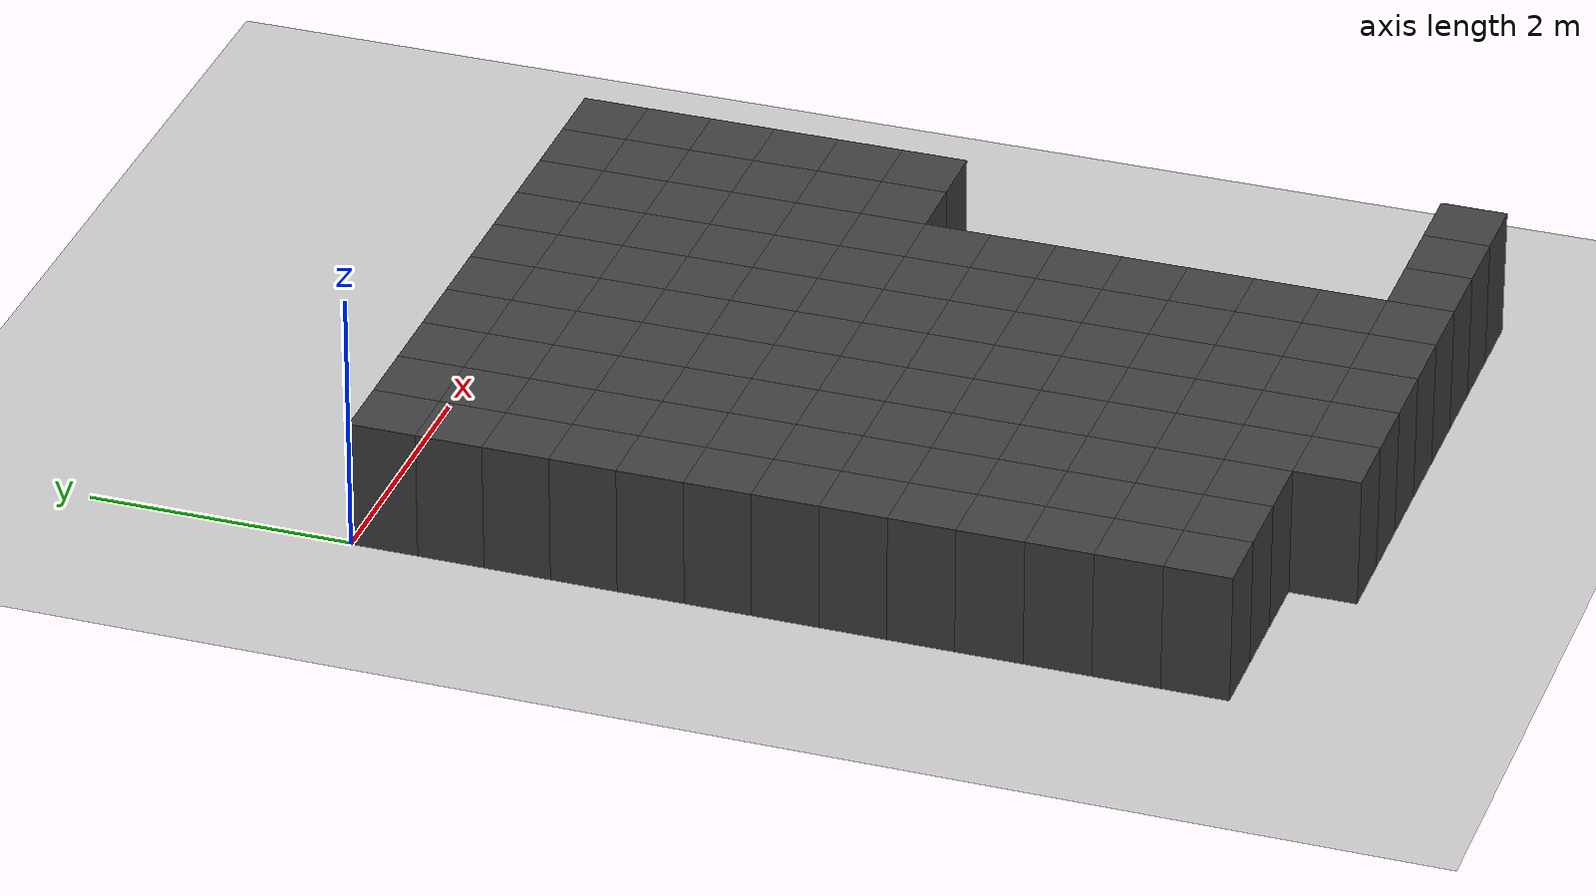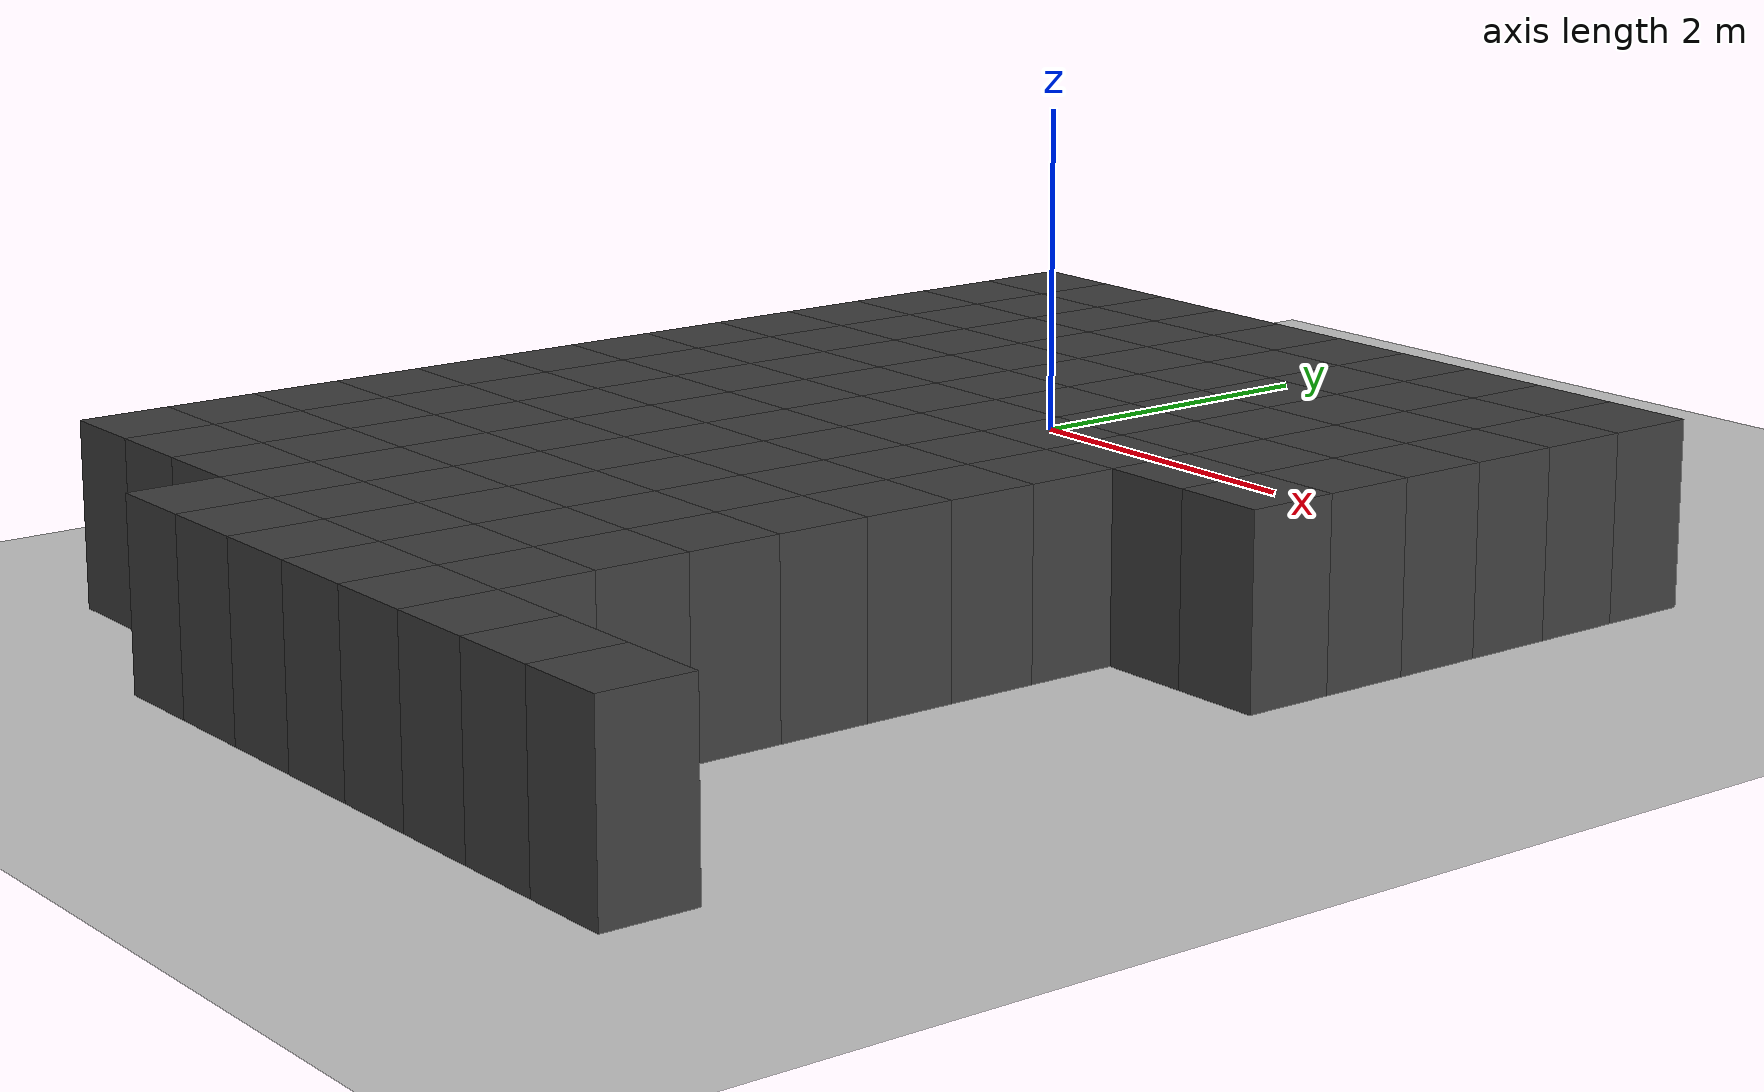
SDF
<sdf version="1.7">
 <world name="map_13820">
  <model name="ground_plane">
   <static>true</static>
   <link name="link">
    <collision name="collision">
     <geometry><plane><normal>0 0 1</normal><size>200 200</size></plane></geometry>
    </collision>
    <visual name="visual">
     <geometry><plane><normal>0 0 1</normal><size>200 200</size></plane></geometry>
     <material><ambient>0.8 0.8 0.8 1</ambient><diffuse>0.8 0.8 0.8 1</diffuse></material>
    </visual>
   </link>
  </model>
  <model name="maze_environment">
   <static>true</static>
   <link name="wall_896">
    <pose>0.250 -0.250 0.500 0 0 0</pose>
    <collision name="col"><geometry><box><size>0.5 0.5 1.0</size></box></geometry></collision>
    <visual name="vis">
     <geometry><box><size>0.5 0.5 1.0</size></box></geometry>
     <material><ambient>0.15 0.15 0.15 1</ambient><diffuse>0.25 0.25 0.25 1</diffuse></material>
    </visual>
   </link>
   <link name="wall_897">
    <pose>0.750 -0.250 0.500 0 0 0</pose>
    <collision name="col"><geometry><box><size>0.5 0.5 1.0</size></box></geometry></collision>
    <visual name="vis">
     <geometry><box><size>0.5 0.5 1.0</size></box></geometry>
     <material><ambient>0.15 0.15 0.15 1</ambient><diffuse>0.25 0.25 0.25 1</diffuse></material>
    </visual>
   </link>
   <link name="wall_898">
    <pose>1.250 -0.250 0.500 0 0 0</pose>
    <collision name="col"><geometry><box><size>0.5 0.5 1.0</size></box></geometry></collision>
    <visual name="vis">
     <geometry><box><size>0.5 0.5 1.0</size></box></geometry>
     <material><ambient>0.15 0.15 0.15 1</ambient><diffuse>0.25 0.25 0.25 1</diffuse></material>
    </visual>
   </link>
   <link name="wall_899">
    <pose>1.750 -0.250 0.500 0 0 0</pose>
    <collision name="col"><geometry><box><size>0.5 0.5 1.0</size></box></geometry></collision>
    <visual name="vis">
     <geometry><box><size>0.5 0.5 1.0</size></box></geometry>
     <material><ambient>0.15 0.15 0.15 1</ambient><diffuse>0.25 0.25 0.25 1</diffuse></material>
    </visual>
   </link>
   <link name="wall_900">
    <pose>2.250 -0.250 0.500 0 0 0</pose>
    <collision name="col"><geometry><box><size>0.5 0.5 1.0</size></box></geometry></collision>
    <visual name="vis">
     <geometry><box><size>0.5 0.5 1.0</size></box></geometry>
     <material><ambient>0.15 0.15 0.15 1</ambient><diffuse>0.25 0.25 0.25 1</diffuse></material>
    </visual>
   </link>
   <link name="wall_901">
    <pose>2.750 -0.250 0.500 0 0 0</pose>
    <collision name="col"><geometry><box><size>0.5 0.5 1.0</size></box></geometry></collision>
    <visual name="vis">
     <geometry><box><size>0.5 0.5 1.0</size></box></geometry>
     <material><ambient>0.15 0.15 0.15 1</ambient><diffuse>0.25 0.25 0.25 1</diffuse></material>
    </visual>
   </link>
   <link name="wall_902">
    <pose>3.250 -0.250 0.500 0 0 0</pose>
    <collision name="col"><geometry><box><size>0.5 0.5 1.0</size></box></geometry></collision>
    <visual name="vis">
     <geometry><box><size>0.5 0.5 1.0</size></box></geometry>
     <material><ambient>0.15 0.15 0.15 1</ambient><diffuse>0.25 0.25 0.25 1</diffuse></material>
    </visual>
   </link>
   <link name="wall_903">
    <pose>3.750 -0.250 0.500 0 0 0</pose>
    <collision name="col"><geometry><box><size>0.5 0.5 1.0</size></box></geometry></collision>
    <visual name="vis">
     <geometry><box><size>0.5 0.5 1.0</size></box></geometry>
     <material><ambient>0.15 0.15 0.15 1</ambient><diffuse>0.25 0.25 0.25 1</diffuse></material>
    </visual>
   </link>
   <link name="wall_904">
    <pose>4.250 -0.250 0.500 0 0 0</pose>
    <collision name="col"><geometry><box><size>0.5 0.5 1.0</size></box></geometry></collision>
    <visual name="vis">
     <geometry><box><size>0.5 0.5 1.0</size></box></geometry>
     <material><ambient>0.15 0.15 0.15 1</ambient><diffuse>0.25 0.25 0.25 1</diffuse></material>
    </visual>
   </link>
   <link name="wall_905">
    <pose>4.750 -0.250 0.500 0 0 0</pose>
    <collision name="col"><geometry><box><size>0.5 0.5 1.0</size></box></geometry></collision>
    <visual name="vis">
     <geometry><box><size>0.5 0.5 1.0</size></box></geometry>
     <material><ambient>0.15 0.15 0.15 1</ambient><diffuse>0.25 0.25 0.25 1</diffuse></material>
    </visual>
   </link>
   <link name="wall_936">
    <pose>0.250 -0.750 0.500 0 0 0</pose>
    <collision name="col"><geometry><box><size>0.5 0.5 1.0</size></box></geometry></collision>
    <visual name="vis">
     <geometry><box><size>0.5 0.5 1.0</size></box></geometry>
     <material><ambient>0.15 0.15 0.15 1</ambient><diffuse>0.25 0.25 0.25 1</diffuse></material>
    </visual>
   </link>
   <link name="wall_937">
    <pose>0.750 -0.750 0.500 0 0 0</pose>
    <collision name="col"><geometry><box><size>0.5 0.5 1.0</size></box></geometry></collision>
    <visual name="vis">
     <geometry><box><size>0.5 0.5 1.0</size></box></geometry>
     <material><ambient>0.15 0.15 0.15 1</ambient><diffuse>0.25 0.25 0.25 1</diffuse></material>
    </visual>
   </link>
   <link name="wall_938">
    <pose>1.250 -0.750 0.500 0 0 0</pose>
    <collision name="col"><geometry><box><size>0.5 0.5 1.0</size></box></geometry></collision>
    <visual name="vis">
     <geometry><box><size>0.5 0.5 1.0</size></box></geometry>
     <material><ambient>0.15 0.15 0.15 1</ambient><diffuse>0.25 0.25 0.25 1</diffuse></material>
    </visual>
   </link>
   <link name="wall_939">
    <pose>1.750 -0.750 0.500 0 0 0</pose>
    <collision name="col"><geometry><box><size>0.5 0.5 1.0</size></box></geometry></collision>
    <visual name="vis">
     <geometry><box><size>0.5 0.5 1.0</size></box></geometry>
     <material><ambient>0.15 0.15 0.15 1</ambient><diffuse>0.25 0.25 0.25 1</diffuse></material>
    </visual>
   </link>
   <link name="wall_940">
    <pose>2.250 -0.750 0.500 0 0 0</pose>
    <collision name="col"><geometry><box><size>0.5 0.5 1.0</size></box></geometry></collision>
    <visual name="vis">
     <geometry><box><size>0.5 0.5 1.0</size></box></geometry>
     <material><ambient>0.15 0.15 0.15 1</ambient><diffuse>0.25 0.25 0.25 1</diffuse></material>
    </visual>
   </link>
   <link name="wall_941">
    <pose>2.750 -0.750 0.500 0 0 0</pose>
    <collision name="col"><geometry><box><size>0.5 0.5 1.0</size></box></geometry></collision>
    <visual name="vis">
     <geometry><box><size>0.5 0.5 1.0</size></box></geometry>
     <material><ambient>0.15 0.15 0.15 1</ambient><diffuse>0.25 0.25 0.25 1</diffuse></material>
    </visual>
   </link>
   <link name="wall_942">
    <pose>3.250 -0.750 0.500 0 0 0</pose>
    <collision name="col"><geometry><box><size>0.5 0.5 1.0</size></box></geometry></collision>
    <visual name="vis">
     <geometry><box><size>0.5 0.5 1.0</size></box></geometry>
     <material><ambient>0.15 0.15 0.15 1</ambient><diffuse>0.25 0.25 0.25 1</diffuse></material>
    </visual>
   </link>
   <link name="wall_943">
    <pose>3.750 -0.750 0.500 0 0 0</pose>
    <collision name="col"><geometry><box><size>0.5 0.5 1.0</size></box></geometry></collision>
    <visual name="vis">
     <geometry><box><size>0.5 0.5 1.0</size></box></geometry>
     <material><ambient>0.15 0.15 0.15 1</ambient><diffuse>0.25 0.25 0.25 1</diffuse></material>
    </visual>
   </link>
   <link name="wall_944">
    <pose>4.250 -0.750 0.500 0 0 0</pose>
    <collision name="col"><geometry><box><size>0.5 0.5 1.0</size></box></geometry></collision>
    <visual name="vis">
     <geometry><box><size>0.5 0.5 1.0</size></box></geometry>
     <material><ambient>0.15 0.15 0.15 1</ambient><diffuse>0.25 0.25 0.25 1</diffuse></material>
    </visual>
   </link>
   <link name="wall_945">
    <pose>4.750 -0.750 0.500 0 0 0</pose>
    <collision name="col"><geometry><box><size>0.5 0.5 1.0</size></box></geometry></collision>
    <visual name="vis">
     <geometry><box><size>0.5 0.5 1.0</size></box></geometry>
     <material><ambient>0.15 0.15 0.15 1</ambient><diffuse>0.25 0.25 0.25 1</diffuse></material>
    </visual>
   </link>
   <link name="wall_969">
    <pose>0.250 -1.250 0.500 0 0 0</pose>
    <collision name="col"><geometry><box><size>0.5 0.5 1.0</size></box></geometry></collision>
    <visual name="vis">
     <geometry><box><size>0.5 0.5 1.0</size></box></geometry>
     <material><ambient>0.15 0.15 0.15 1</ambient><diffuse>0.25 0.25 0.25 1</diffuse></material>
    </visual>
   </link>
   <link name="wall_970">
    <pose>0.750 -1.250 0.500 0 0 0</pose>
    <collision name="col"><geometry><box><size>0.5 0.5 1.0</size></box></geometry></collision>
    <visual name="vis">
     <geometry><box><size>0.5 0.5 1.0</size></box></geometry>
     <material><ambient>0.15 0.15 0.15 1</ambient><diffuse>0.25 0.25 0.25 1</diffuse></material>
    </visual>
   </link>
   <link name="wall_971">
    <pose>1.250 -1.250 0.500 0 0 0</pose>
    <collision name="col"><geometry><box><size>0.5 0.5 1.0</size></box></geometry></collision>
    <visual name="vis">
     <geometry><box><size>0.5 0.5 1.0</size></box></geometry>
     <material><ambient>0.15 0.15 0.15 1</ambient><diffuse>0.25 0.25 0.25 1</diffuse></material>
    </visual>
   </link>
   <link name="wall_972">
    <pose>1.750 -1.250 0.500 0 0 0</pose>
    <collision name="col"><geometry><box><size>0.5 0.5 1.0</size></box></geometry></collision>
    <visual name="vis">
     <geometry><box><size>0.5 0.5 1.0</size></box></geometry>
     <material><ambient>0.15 0.15 0.15 1</ambient><diffuse>0.25 0.25 0.25 1</diffuse></material>
    </visual>
   </link>
   <link name="wall_973">
    <pose>2.250 -1.250 0.500 0 0 0</pose>
    <collision name="col"><geometry><box><size>0.5 0.5 1.0</size></box></geometry></collision>
    <visual name="vis">
     <geometry><box><size>0.5 0.5 1.0</size></box></geometry>
     <material><ambient>0.15 0.15 0.15 1</ambient><diffuse>0.25 0.25 0.25 1</diffuse></material>
    </visual>
   </link>
   <link name="wall_974">
    <pose>2.750 -1.250 0.500 0 0 0</pose>
    <collision name="col"><geometry><box><size>0.5 0.5 1.0</size></box></geometry></collision>
    <visual name="vis">
     <geometry><box><size>0.5 0.5 1.0</size></box></geometry>
     <material><ambient>0.15 0.15 0.15 1</ambient><diffuse>0.25 0.25 0.25 1</diffuse></material>
    </visual>
   </link>
   <link name="wall_975">
    <pose>3.250 -1.250 0.500 0 0 0</pose>
    <collision name="col"><geometry><box><size>0.5 0.5 1.0</size></box></geometry></collision>
    <visual name="vis">
     <geometry><box><size>0.5 0.5 1.0</size></box></geometry>
     <material><ambient>0.15 0.15 0.15 1</ambient><diffuse>0.25 0.25 0.25 1</diffuse></material>
    </visual>
   </link>
   <link name="wall_976">
    <pose>3.750 -1.250 0.500 0 0 0</pose>
    <collision name="col"><geometry><box><size>0.5 0.5 1.0</size></box></geometry></collision>
    <visual name="vis">
     <geometry><box><size>0.5 0.5 1.0</size></box></geometry>
     <material><ambient>0.15 0.15 0.15 1</ambient><diffuse>0.25 0.25 0.25 1</diffuse></material>
    </visual>
   </link>
   <link name="wall_977">
    <pose>4.250 -1.250 0.500 0 0 0</pose>
    <collision name="col"><geometry><box><size>0.5 0.5 1.0</size></box></geometry></collision>
    <visual name="vis">
     <geometry><box><size>0.5 0.5 1.0</size></box></geometry>
     <material><ambient>0.15 0.15 0.15 1</ambient><diffuse>0.25 0.25 0.25 1</diffuse></material>
    </visual>
   </link>
   <link name="wall_978">
    <pose>4.750 -1.250 0.500 0 0 0</pose>
    <collision name="col"><geometry><box><size>0.5 0.5 1.0</size></box></geometry></collision>
    <visual name="vis">
     <geometry><box><size>0.5 0.5 1.0</size></box></geometry>
     <material><ambient>0.15 0.15 0.15 1</ambient><diffuse>0.25 0.25 0.25 1</diffuse></material>
    </visual>
   </link>
   <link name="wall_995">
    <pose>0.250 -1.750 0.500 0 0 0</pose>
    <collision name="col"><geometry><box><size>0.5 0.5 1.0</size></box></geometry></collision>
    <visual name="vis">
     <geometry><box><size>0.5 0.5 1.0</size></box></geometry>
     <material><ambient>0.15 0.15 0.15 1</ambient><diffuse>0.25 0.25 0.25 1</diffuse></material>
    </visual>
   </link>
   <link name="wall_996">
    <pose>0.750 -1.750 0.500 0 0 0</pose>
    <collision name="col"><geometry><box><size>0.5 0.5 1.0</size></box></geometry></collision>
    <visual name="vis">
     <geometry><box><size>0.5 0.5 1.0</size></box></geometry>
     <material><ambient>0.15 0.15 0.15 1</ambient><diffuse>0.25 0.25 0.25 1</diffuse></material>
    </visual>
   </link>
   <link name="wall_997">
    <pose>1.250 -1.750 0.500 0 0 0</pose>
    <collision name="col"><geometry><box><size>0.5 0.5 1.0</size></box></geometry></collision>
    <visual name="vis">
     <geometry><box><size>0.5 0.5 1.0</size></box></geometry>
     <material><ambient>0.15 0.15 0.15 1</ambient><diffuse>0.25 0.25 0.25 1</diffuse></material>
    </visual>
   </link>
   <link name="wall_998">
    <pose>1.750 -1.750 0.500 0 0 0</pose>
    <collision name="col"><geometry><box><size>0.5 0.5 1.0</size></box></geometry></collision>
    <visual name="vis">
     <geometry><box><size>0.5 0.5 1.0</size></box></geometry>
     <material><ambient>0.15 0.15 0.15 1</ambient><diffuse>0.25 0.25 0.25 1</diffuse></material>
    </visual>
   </link>
   <link name="wall_999">
    <pose>2.250 -1.750 0.500 0 0 0</pose>
    <collision name="col"><geometry><box><size>0.5 0.5 1.0</size></box></geometry></collision>
    <visual name="vis">
     <geometry><box><size>0.5 0.5 1.0</size></box></geometry>
     <material><ambient>0.15 0.15 0.15 1</ambient><diffuse>0.25 0.25 0.25 1</diffuse></material>
    </visual>
   </link>
   <link name="wall_1000">
    <pose>2.750 -1.750 0.500 0 0 0</pose>
    <collision name="col"><geometry><box><size>0.5 0.5 1.0</size></box></geometry></collision>
    <visual name="vis">
     <geometry><box><size>0.5 0.5 1.0</size></box></geometry>
     <material><ambient>0.15 0.15 0.15 1</ambient><diffuse>0.25 0.25 0.25 1</diffuse></material>
    </visual>
   </link>
   <link name="wall_1001">
    <pose>3.250 -1.750 0.500 0 0 0</pose>
    <collision name="col"><geometry><box><size>0.5 0.5 1.0</size></box></geometry></collision>
    <visual name="vis">
     <geometry><box><size>0.5 0.5 1.0</size></box></geometry>
     <material><ambient>0.15 0.15 0.15 1</ambient><diffuse>0.25 0.25 0.25 1</diffuse></material>
    </visual>
   </link>
   <link name="wall_1002">
    <pose>3.750 -1.750 0.500 0 0 0</pose>
    <collision name="col"><geometry><box><size>0.5 0.5 1.0</size></box></geometry></collision>
    <visual name="vis">
     <geometry><box><size>0.5 0.5 1.0</size></box></geometry>
     <material><ambient>0.15 0.15 0.15 1</ambient><diffuse>0.25 0.25 0.25 1</diffuse></material>
    </visual>
   </link>
   <link name="wall_1003">
    <pose>4.250 -1.750 0.500 0 0 0</pose>
    <collision name="col"><geometry><box><size>0.5 0.5 1.0</size></box></geometry></collision>
    <visual name="vis">
     <geometry><box><size>0.5 0.5 1.0</size></box></geometry>
     <material><ambient>0.15 0.15 0.15 1</ambient><diffuse>0.25 0.25 0.25 1</diffuse></material>
    </visual>
   </link>
   <link name="wall_1004">
    <pose>4.750 -1.750 0.500 0 0 0</pose>
    <collision name="col"><geometry><box><size>0.5 0.5 1.0</size></box></geometry></collision>
    <visual name="vis">
     <geometry><box><size>0.5 0.5 1.0</size></box></geometry>
     <material><ambient>0.15 0.15 0.15 1</ambient><diffuse>0.25 0.25 0.25 1</diffuse></material>
    </visual>
   </link>
   <link name="wall_1024">
    <pose>0.250 -2.250 0.500 0 0 0</pose>
    <collision name="col"><geometry><box><size>0.5 0.5 1.0</size></box></geometry></collision>
    <visual name="vis">
     <geometry><box><size>0.5 0.5 1.0</size></box></geometry>
     <material><ambient>0.15 0.15 0.15 1</ambient><diffuse>0.25 0.25 0.25 1</diffuse></material>
    </visual>
   </link>
   <link name="wall_1025">
    <pose>0.750 -2.250 0.500 0 0 0</pose>
    <collision name="col"><geometry><box><size>0.5 0.5 1.0</size></box></geometry></collision>
    <visual name="vis">
     <geometry><box><size>0.5 0.5 1.0</size></box></geometry>
     <material><ambient>0.15 0.15 0.15 1</ambient><diffuse>0.25 0.25 0.25 1</diffuse></material>
    </visual>
   </link>
   <link name="wall_1026">
    <pose>1.250 -2.250 0.500 0 0 0</pose>
    <collision name="col"><geometry><box><size>0.5 0.5 1.0</size></box></geometry></collision>
    <visual name="vis">
     <geometry><box><size>0.5 0.5 1.0</size></box></geometry>
     <material><ambient>0.15 0.15 0.15 1</ambient><diffuse>0.25 0.25 0.25 1</diffuse></material>
    </visual>
   </link>
   <link name="wall_1027">
    <pose>1.750 -2.250 0.500 0 0 0</pose>
    <collision name="col"><geometry><box><size>0.5 0.5 1.0</size></box></geometry></collision>
    <visual name="vis">
     <geometry><box><size>0.5 0.5 1.0</size></box></geometry>
     <material><ambient>0.15 0.15 0.15 1</ambient><diffuse>0.25 0.25 0.25 1</diffuse></material>
    </visual>
   </link>
   <link name="wall_1028">
    <pose>2.250 -2.250 0.500 0 0 0</pose>
    <collision name="col"><geometry><box><size>0.5 0.5 1.0</size></box></geometry></collision>
    <visual name="vis">
     <geometry><box><size>0.5 0.5 1.0</size></box></geometry>
     <material><ambient>0.15 0.15 0.15 1</ambient><diffuse>0.25 0.25 0.25 1</diffuse></material>
    </visual>
   </link>
   <link name="wall_1029">
    <pose>2.750 -2.250 0.500 0 0 0</pose>
    <collision name="col"><geometry><box><size>0.5 0.5 1.0</size></box></geometry></collision>
    <visual name="vis">
     <geometry><box><size>0.5 0.5 1.0</size></box></geometry>
     <material><ambient>0.15 0.15 0.15 1</ambient><diffuse>0.25 0.25 0.25 1</diffuse></material>
    </visual>
   </link>
   <link name="wall_1030">
    <pose>3.250 -2.250 0.500 0 0 0</pose>
    <collision name="col"><geometry><box><size>0.5 0.5 1.0</size></box></geometry></collision>
    <visual name="vis">
     <geometry><box><size>0.5 0.5 1.0</size></box></geometry>
     <material><ambient>0.15 0.15 0.15 1</ambient><diffuse>0.25 0.25 0.25 1</diffuse></material>
    </visual>
   </link>
   <link name="wall_1031">
    <pose>3.750 -2.250 0.500 0 0 0</pose>
    <collision name="col"><geometry><box><size>0.5 0.5 1.0</size></box></geometry></collision>
    <visual name="vis">
     <geometry><box><size>0.5 0.5 1.0</size></box></geometry>
     <material><ambient>0.15 0.15 0.15 1</ambient><diffuse>0.25 0.25 0.25 1</diffuse></material>
    </visual>
   </link>
   <link name="wall_1032">
    <pose>4.250 -2.250 0.500 0 0 0</pose>
    <collision name="col"><geometry><box><size>0.5 0.5 1.0</size></box></geometry></collision>
    <visual name="vis">
     <geometry><box><size>0.5 0.5 1.0</size></box></geometry>
     <material><ambient>0.15 0.15 0.15 1</ambient><diffuse>0.25 0.25 0.25 1</diffuse></material>
    </visual>
   </link>
   <link name="wall_1033">
    <pose>4.750 -2.250 0.500 0 0 0</pose>
    <collision name="col"><geometry><box><size>0.5 0.5 1.0</size></box></geometry></collision>
    <visual name="vis">
     <geometry><box><size>0.5 0.5 1.0</size></box></geometry>
     <material><ambient>0.15 0.15 0.15 1</ambient><diffuse>0.25 0.25 0.25 1</diffuse></material>
    </visual>
   </link>
   <link name="wall_1055">
    <pose>0.250 -2.750 0.500 0 0 0</pose>
    <collision name="col"><geometry><box><size>0.5 0.5 1.0</size></box></geometry></collision>
    <visual name="vis">
     <geometry><box><size>0.5 0.5 1.0</size></box></geometry>
     <material><ambient>0.15 0.15 0.15 1</ambient><diffuse>0.25 0.25 0.25 1</diffuse></material>
    </visual>
   </link>
   <link name="wall_1056">
    <pose>0.750 -2.750 0.500 0 0 0</pose>
    <collision name="col"><geometry><box><size>0.5 0.5 1.0</size></box></geometry></collision>
    <visual name="vis">
     <geometry><box><size>0.5 0.5 1.0</size></box></geometry>
     <material><ambient>0.15 0.15 0.15 1</ambient><diffuse>0.25 0.25 0.25 1</diffuse></material>
    </visual>
   </link>
   <link name="wall_1057">
    <pose>1.250 -2.750 0.500 0 0 0</pose>
    <collision name="col"><geometry><box><size>0.5 0.5 1.0</size></box></geometry></collision>
    <visual name="vis">
     <geometry><box><size>0.5 0.5 1.0</size></box></geometry>
     <material><ambient>0.15 0.15 0.15 1</ambient><diffuse>0.25 0.25 0.25 1</diffuse></material>
    </visual>
   </link>
   <link name="wall_1058">
    <pose>1.750 -2.750 0.500 0 0 0</pose>
    <collision name="col"><geometry><box><size>0.5 0.5 1.0</size></box></geometry></collision>
    <visual name="vis">
     <geometry><box><size>0.5 0.5 1.0</size></box></geometry>
     <material><ambient>0.15 0.15 0.15 1</ambient><diffuse>0.25 0.25 0.25 1</diffuse></material>
    </visual>
   </link>
   <link name="wall_1059">
    <pose>2.250 -2.750 0.500 0 0 0</pose>
    <collision name="col"><geometry><box><size>0.5 0.5 1.0</size></box></geometry></collision>
    <visual name="vis">
     <geometry><box><size>0.5 0.5 1.0</size></box></geometry>
     <material><ambient>0.15 0.15 0.15 1</ambient><diffuse>0.25 0.25 0.25 1</diffuse></material>
    </visual>
   </link>
   <link name="wall_1060">
    <pose>2.750 -2.750 0.500 0 0 0</pose>
    <collision name="col"><geometry><box><size>0.5 0.5 1.0</size></box></geometry></collision>
    <visual name="vis">
     <geometry><box><size>0.5 0.5 1.0</size></box></geometry>
     <material><ambient>0.15 0.15 0.15 1</ambient><diffuse>0.25 0.25 0.25 1</diffuse></material>
    </visual>
   </link>
   <link name="wall_1061">
    <pose>3.250 -2.750 0.500 0 0 0</pose>
    <collision name="col"><geometry><box><size>0.5 0.5 1.0</size></box></geometry></collision>
    <visual name="vis">
     <geometry><box><size>0.5 0.5 1.0</size></box></geometry>
     <material><ambient>0.15 0.15 0.15 1</ambient><diffuse>0.25 0.25 0.25 1</diffuse></material>
    </visual>
   </link>
   <link name="wall_1062">
    <pose>3.750 -2.750 0.500 0 0 0</pose>
    <collision name="col"><geometry><box><size>0.5 0.5 1.0</size></box></geometry></collision>
    <visual name="vis">
     <geometry><box><size>0.5 0.5 1.0</size></box></geometry>
     <material><ambient>0.15 0.15 0.15 1</ambient><diffuse>0.25 0.25 0.25 1</diffuse></material>
    </visual>
   </link>
   <link name="wall_1063">
    <pose>4.250 -2.750 0.500 0 0 0</pose>
    <collision name="col"><geometry><box><size>0.5 0.5 1.0</size></box></geometry></collision>
    <visual name="vis">
     <geometry><box><size>0.5 0.5 1.0</size></box></geometry>
     <material><ambient>0.15 0.15 0.15 1</ambient><diffuse>0.25 0.25 0.25 1</diffuse></material>
    </visual>
   </link>
   <link name="wall_1064">
    <pose>4.750 -2.750 0.500 0 0 0</pose>
    <collision name="col"><geometry><box><size>0.5 0.5 1.0</size></box></geometry></collision>
    <visual name="vis">
     <geometry><box><size>0.5 0.5 1.0</size></box></geometry>
     <material><ambient>0.15 0.15 0.15 1</ambient><diffuse>0.25 0.25 0.25 1</diffuse></material>
    </visual>
   </link>
   <link name="wall_1095">
    <pose>0.250 -3.250 0.500 0 0 0</pose>
    <collision name="col"><geometry><box><size>0.5 0.5 1.0</size></box></geometry></collision>
    <visual name="vis">
     <geometry><box><size>0.5 0.5 1.0</size></box></geometry>
     <material><ambient>0.15 0.15 0.15 1</ambient><diffuse>0.25 0.25 0.25 1</diffuse></material>
    </visual>
   </link>
   <link name="wall_1096">
    <pose>0.750 -3.250 0.500 0 0 0</pose>
    <collision name="col"><geometry><box><size>0.5 0.5 1.0</size></box></geometry></collision>
    <visual name="vis">
     <geometry><box><size>0.5 0.5 1.0</size></box></geometry>
     <material><ambient>0.15 0.15 0.15 1</ambient><diffuse>0.25 0.25 0.25 1</diffuse></material>
    </visual>
   </link>
   <link name="wall_1097">
    <pose>1.250 -3.250 0.500 0 0 0</pose>
    <collision name="col"><geometry><box><size>0.5 0.5 1.0</size></box></geometry></collision>
    <visual name="vis">
     <geometry><box><size>0.5 0.5 1.0</size></box></geometry>
     <material><ambient>0.15 0.15 0.15 1</ambient><diffuse>0.25 0.25 0.25 1</diffuse></material>
    </visual>
   </link>
   <link name="wall_1098">
    <pose>1.750 -3.250 0.500 0 0 0</pose>
    <collision name="col"><geometry><box><size>0.5 0.5 1.0</size></box></geometry></collision>
    <visual name="vis">
     <geometry><box><size>0.5 0.5 1.0</size></box></geometry>
     <material><ambient>0.15 0.15 0.15 1</ambient><diffuse>0.25 0.25 0.25 1</diffuse></material>
    </visual>
   </link>
   <link name="wall_1099">
    <pose>2.250 -3.250 0.500 0 0 0</pose>
    <collision name="col"><geometry><box><size>0.5 0.5 1.0</size></box></geometry></collision>
    <visual name="vis">
     <geometry><box><size>0.5 0.5 1.0</size></box></geometry>
     <material><ambient>0.15 0.15 0.15 1</ambient><diffuse>0.25 0.25 0.25 1</diffuse></material>
    </visual>
   </link>
   <link name="wall_1100">
    <pose>2.750 -3.250 0.500 0 0 0</pose>
    <collision name="col"><geometry><box><size>0.5 0.5 1.0</size></box></geometry></collision>
    <visual name="vis">
     <geometry><box><size>0.5 0.5 1.0</size></box></geometry>
     <material><ambient>0.15 0.15 0.15 1</ambient><diffuse>0.25 0.25 0.25 1</diffuse></material>
    </visual>
   </link>
   <link name="wall_1101">
    <pose>3.250 -3.250 0.500 0 0 0</pose>
    <collision name="col"><geometry><box><size>0.5 0.5 1.0</size></box></geometry></collision>
    <visual name="vis">
     <geometry><box><size>0.5 0.5 1.0</size></box></geometry>
     <material><ambient>0.15 0.15 0.15 1</ambient><diffuse>0.25 0.25 0.25 1</diffuse></material>
    </visual>
   </link>
   <link name="wall_1102">
    <pose>3.750 -3.250 0.500 0 0 0</pose>
    <collision name="col"><geometry><box><size>0.5 0.5 1.0</size></box></geometry></collision>
    <visual name="vis">
     <geometry><box><size>0.5 0.5 1.0</size></box></geometry>
     <material><ambient>0.15 0.15 0.15 1</ambient><diffuse>0.25 0.25 0.25 1</diffuse></material>
    </visual>
   </link>
   <link name="wall_1122">
    <pose>0.250 -3.750 0.500 0 0 0</pose>
    <collision name="col"><geometry><box><size>0.5 0.5 1.0</size></box></geometry></collision>
    <visual name="vis">
     <geometry><box><size>0.5 0.5 1.0</size></box></geometry>
     <material><ambient>0.15 0.15 0.15 1</ambient><diffuse>0.25 0.25 0.25 1</diffuse></material>
    </visual>
   </link>
   <link name="wall_1123">
    <pose>0.750 -3.750 0.500 0 0 0</pose>
    <collision name="col"><geometry><box><size>0.5 0.5 1.0</size></box></geometry></collision>
    <visual name="vis">
     <geometry><box><size>0.5 0.5 1.0</size></box></geometry>
     <material><ambient>0.15 0.15 0.15 1</ambient><diffuse>0.25 0.25 0.25 1</diffuse></material>
    </visual>
   </link>
   <link name="wall_1124">
    <pose>1.250 -3.750 0.500 0 0 0</pose>
    <collision name="col"><geometry><box><size>0.5 0.5 1.0</size></box></geometry></collision>
    <visual name="vis">
     <geometry><box><size>0.5 0.5 1.0</size></box></geometry>
     <material><ambient>0.15 0.15 0.15 1</ambient><diffuse>0.25 0.25 0.25 1</diffuse></material>
    </visual>
   </link>
   <link name="wall_1125">
    <pose>1.750 -3.750 0.500 0 0 0</pose>
    <collision name="col"><geometry><box><size>0.5 0.5 1.0</size></box></geometry></collision>
    <visual name="vis">
     <geometry><box><size>0.5 0.5 1.0</size></box></geometry>
     <material><ambient>0.15 0.15 0.15 1</ambient><diffuse>0.25 0.25 0.25 1</diffuse></material>
    </visual>
   </link>
   <link name="wall_1126">
    <pose>2.250 -3.750 0.500 0 0 0</pose>
    <collision name="col"><geometry><box><size>0.5 0.5 1.0</size></box></geometry></collision>
    <visual name="vis">
     <geometry><box><size>0.5 0.5 1.0</size></box></geometry>
     <material><ambient>0.15 0.15 0.15 1</ambient><diffuse>0.25 0.25 0.25 1</diffuse></material>
    </visual>
   </link>
   <link name="wall_1127">
    <pose>2.750 -3.750 0.500 0 0 0</pose>
    <collision name="col"><geometry><box><size>0.5 0.5 1.0</size></box></geometry></collision>
    <visual name="vis">
     <geometry><box><size>0.5 0.5 1.0</size></box></geometry>
     <material><ambient>0.15 0.15 0.15 1</ambient><diffuse>0.25 0.25 0.25 1</diffuse></material>
    </visual>
   </link>
   <link name="wall_1128">
    <pose>3.250 -3.750 0.500 0 0 0</pose>
    <collision name="col"><geometry><box><size>0.5 0.5 1.0</size></box></geometry></collision>
    <visual name="vis">
     <geometry><box><size>0.5 0.5 1.0</size></box></geometry>
     <material><ambient>0.15 0.15 0.15 1</ambient><diffuse>0.25 0.25 0.25 1</diffuse></material>
    </visual>
   </link>
   <link name="wall_1129">
    <pose>3.750 -3.750 0.500 0 0 0</pose>
    <collision name="col"><geometry><box><size>0.5 0.5 1.0</size></box></geometry></collision>
    <visual name="vis">
     <geometry><box><size>0.5 0.5 1.0</size></box></geometry>
     <material><ambient>0.15 0.15 0.15 1</ambient><diffuse>0.25 0.25 0.25 1</diffuse></material>
    </visual>
   </link>
   <link name="wall_1149">
    <pose>0.250 -4.250 0.500 0 0 0</pose>
    <collision name="col"><geometry><box><size>0.5 0.5 1.0</size></box></geometry></collision>
    <visual name="vis">
     <geometry><box><size>0.5 0.5 1.0</size></box></geometry>
     <material><ambient>0.15 0.15 0.15 1</ambient><diffuse>0.25 0.25 0.25 1</diffuse></material>
    </visual>
   </link>
   <link name="wall_1150">
    <pose>0.750 -4.250 0.500 0 0 0</pose>
    <collision name="col"><geometry><box><size>0.5 0.5 1.0</size></box></geometry></collision>
    <visual name="vis">
     <geometry><box><size>0.5 0.5 1.0</size></box></geometry>
     <material><ambient>0.15 0.15 0.15 1</ambient><diffuse>0.25 0.25 0.25 1</diffuse></material>
    </visual>
   </link>
   <link name="wall_1151">
    <pose>1.250 -4.250 0.500 0 0 0</pose>
    <collision name="col"><geometry><box><size>0.5 0.5 1.0</size></box></geometry></collision>
    <visual name="vis">
     <geometry><box><size>0.5 0.5 1.0</size></box></geometry>
     <material><ambient>0.15 0.15 0.15 1</ambient><diffuse>0.25 0.25 0.25 1</diffuse></material>
    </visual>
   </link>
   <link name="wall_1152">
    <pose>1.750 -4.250 0.500 0 0 0</pose>
    <collision name="col"><geometry><box><size>0.5 0.5 1.0</size></box></geometry></collision>
    <visual name="vis">
     <geometry><box><size>0.5 0.5 1.0</size></box></geometry>
     <material><ambient>0.15 0.15 0.15 1</ambient><diffuse>0.25 0.25 0.25 1</diffuse></material>
    </visual>
   </link>
   <link name="wall_1153">
    <pose>2.250 -4.250 0.500 0 0 0</pose>
    <collision name="col"><geometry><box><size>0.5 0.5 1.0</size></box></geometry></collision>
    <visual name="vis">
     <geometry><box><size>0.5 0.5 1.0</size></box></geometry>
     <material><ambient>0.15 0.15 0.15 1</ambient><diffuse>0.25 0.25 0.25 1</diffuse></material>
    </visual>
   </link>
   <link name="wall_1154">
    <pose>2.750 -4.250 0.500 0 0 0</pose>
    <collision name="col"><geometry><box><size>0.5 0.5 1.0</size></box></geometry></collision>
    <visual name="vis">
     <geometry><box><size>0.5 0.5 1.0</size></box></geometry>
     <material><ambient>0.15 0.15 0.15 1</ambient><diffuse>0.25 0.25 0.25 1</diffuse></material>
    </visual>
   </link>
   <link name="wall_1155">
    <pose>3.250 -4.250 0.500 0 0 0</pose>
    <collision name="col"><geometry><box><size>0.5 0.5 1.0</size></box></geometry></collision>
    <visual name="vis">
     <geometry><box><size>0.5 0.5 1.0</size></box></geometry>
     <material><ambient>0.15 0.15 0.15 1</ambient><diffuse>0.25 0.25 0.25 1</diffuse></material>
    </visual>
   </link>
   <link name="wall_1156">
    <pose>3.750 -4.250 0.500 0 0 0</pose>
    <collision name="col"><geometry><box><size>0.5 0.5 1.0</size></box></geometry></collision>
    <visual name="vis">
     <geometry><box><size>0.5 0.5 1.0</size></box></geometry>
     <material><ambient>0.15 0.15 0.15 1</ambient><diffuse>0.25 0.25 0.25 1</diffuse></material>
    </visual>
   </link>
   <link name="wall_1176">
    <pose>0.250 -4.750 0.500 0 0 0</pose>
    <collision name="col"><geometry><box><size>0.5 0.5 1.0</size></box></geometry></collision>
    <visual name="vis">
     <geometry><box><size>0.5 0.5 1.0</size></box></geometry>
     <material><ambient>0.15 0.15 0.15 1</ambient><diffuse>0.25 0.25 0.25 1</diffuse></material>
    </visual>
   </link>
   <link name="wall_1177">
    <pose>0.750 -4.750 0.500 0 0 0</pose>
    <collision name="col"><geometry><box><size>0.5 0.5 1.0</size></box></geometry></collision>
    <visual name="vis">
     <geometry><box><size>0.5 0.5 1.0</size></box></geometry>
     <material><ambient>0.15 0.15 0.15 1</ambient><diffuse>0.25 0.25 0.25 1</diffuse></material>
    </visual>
   </link>
   <link name="wall_1178">
    <pose>1.250 -4.750 0.500 0 0 0</pose>
    <collision name="col"><geometry><box><size>0.5 0.5 1.0</size></box></geometry></collision>
    <visual name="vis">
     <geometry><box><size>0.5 0.5 1.0</size></box></geometry>
     <material><ambient>0.15 0.15 0.15 1</ambient><diffuse>0.25 0.25 0.25 1</diffuse></material>
    </visual>
   </link>
   <link name="wall_1179">
    <pose>1.750 -4.750 0.500 0 0 0</pose>
    <collision name="col"><geometry><box><size>0.5 0.5 1.0</size></box></geometry></collision>
    <visual name="vis">
     <geometry><box><size>0.5 0.5 1.0</size></box></geometry>
     <material><ambient>0.15 0.15 0.15 1</ambient><diffuse>0.25 0.25 0.25 1</diffuse></material>
    </visual>
   </link>
   <link name="wall_1180">
    <pose>2.250 -4.750 0.500 0 0 0</pose>
    <collision name="col"><geometry><box><size>0.5 0.5 1.0</size></box></geometry></collision>
    <visual name="vis">
     <geometry><box><size>0.5 0.5 1.0</size></box></geometry>
     <material><ambient>0.15 0.15 0.15 1</ambient><diffuse>0.25 0.25 0.25 1</diffuse></material>
    </visual>
   </link>
   <link name="wall_1181">
    <pose>2.750 -4.750 0.500 0 0 0</pose>
    <collision name="col"><geometry><box><size>0.5 0.5 1.0</size></box></geometry></collision>
    <visual name="vis">
     <geometry><box><size>0.5 0.5 1.0</size></box></geometry>
     <material><ambient>0.15 0.15 0.15 1</ambient><diffuse>0.25 0.25 0.25 1</diffuse></material>
    </visual>
   </link>
   <link name="wall_1182">
    <pose>3.250 -4.750 0.500 0 0 0</pose>
    <collision name="col"><geometry><box><size>0.5 0.5 1.0</size></box></geometry></collision>
    <visual name="vis">
     <geometry><box><size>0.5 0.5 1.0</size></box></geometry>
     <material><ambient>0.15 0.15 0.15 1</ambient><diffuse>0.25 0.25 0.25 1</diffuse></material>
    </visual>
   </link>
   <link name="wall_1183">
    <pose>3.750 -4.750 0.500 0 0 0</pose>
    <collision name="col"><geometry><box><size>0.5 0.5 1.0</size></box></geometry></collision>
    <visual name="vis">
     <geometry><box><size>0.5 0.5 1.0</size></box></geometry>
     <material><ambient>0.15 0.15 0.15 1</ambient><diffuse>0.25 0.25 0.25 1</diffuse></material>
    </visual>
   </link>
   <link name="wall_1211">
    <pose>0.250 -5.250 0.500 0 0 0</pose>
    <collision name="col"><geometry><box><size>0.5 0.5 1.0</size></box></geometry></collision>
    <visual name="vis">
     <geometry><box><size>0.5 0.5 1.0</size></box></geometry>
     <material><ambient>0.15 0.15 0.15 1</ambient><diffuse>0.25 0.25 0.25 1</diffuse></material>
    </visual>
   </link>
   <link name="wall_1212">
    <pose>0.750 -5.250 0.500 0 0 0</pose>
    <collision name="col"><geometry><box><size>0.5 0.5 1.0</size></box></geometry></collision>
    <visual name="vis">
     <geometry><box><size>0.5 0.5 1.0</size></box></geometry>
     <material><ambient>0.15 0.15 0.15 1</ambient><diffuse>0.25 0.25 0.25 1</diffuse></material>
    </visual>
   </link>
   <link name="wall_1213">
    <pose>1.250 -5.250 0.500 0 0 0</pose>
    <collision name="col"><geometry><box><size>0.5 0.5 1.0</size></box></geometry></collision>
    <visual name="vis">
     <geometry><box><size>0.5 0.5 1.0</size></box></geometry>
     <material><ambient>0.15 0.15 0.15 1</ambient><diffuse>0.25 0.25 0.25 1</diffuse></material>
    </visual>
   </link>
   <link name="wall_1214">
    <pose>1.750 -5.250 0.500 0 0 0</pose>
    <collision name="col"><geometry><box><size>0.5 0.5 1.0</size></box></geometry></collision>
    <visual name="vis">
     <geometry><box><size>0.5 0.5 1.0</size></box></geometry>
     <material><ambient>0.15 0.15 0.15 1</ambient><diffuse>0.25 0.25 0.25 1</diffuse></material>
    </visual>
   </link>
   <link name="wall_1215">
    <pose>2.250 -5.250 0.500 0 0 0</pose>
    <collision name="col"><geometry><box><size>0.5 0.5 1.0</size></box></geometry></collision>
    <visual name="vis">
     <geometry><box><size>0.5 0.5 1.0</size></box></geometry>
     <material><ambient>0.15 0.15 0.15 1</ambient><diffuse>0.25 0.25 0.25 1</diffuse></material>
    </visual>
   </link>
   <link name="wall_1216">
    <pose>2.750 -5.250 0.500 0 0 0</pose>
    <collision name="col"><geometry><box><size>0.5 0.5 1.0</size></box></geometry></collision>
    <visual name="vis">
     <geometry><box><size>0.5 0.5 1.0</size></box></geometry>
     <material><ambient>0.15 0.15 0.15 1</ambient><diffuse>0.25 0.25 0.25 1</diffuse></material>
    </visual>
   </link>
   <link name="wall_1217">
    <pose>3.250 -5.250 0.500 0 0 0</pose>
    <collision name="col"><geometry><box><size>0.5 0.5 1.0</size></box></geometry></collision>
    <visual name="vis">
     <geometry><box><size>0.5 0.5 1.0</size></box></geometry>
     <material><ambient>0.15 0.15 0.15 1</ambient><diffuse>0.25 0.25 0.25 1</diffuse></material>
    </visual>
   </link>
   <link name="wall_1218">
    <pose>3.750 -5.250 0.500 0 0 0</pose>
    <collision name="col"><geometry><box><size>0.5 0.5 1.0</size></box></geometry></collision>
    <visual name="vis">
     <geometry><box><size>0.5 0.5 1.0</size></box></geometry>
     <material><ambient>0.15 0.15 0.15 1</ambient><diffuse>0.25 0.25 0.25 1</diffuse></material>
    </visual>
   </link>
   <link name="wall_1246">
    <pose>0.250 -5.750 0.500 0 0 0</pose>
    <collision name="col"><geometry><box><size>0.5 0.5 1.0</size></box></geometry></collision>
    <visual name="vis">
     <geometry><box><size>0.5 0.5 1.0</size></box></geometry>
     <material><ambient>0.15 0.15 0.15 1</ambient><diffuse>0.25 0.25 0.25 1</diffuse></material>
    </visual>
   </link>
   <link name="wall_1247">
    <pose>0.750 -5.750 0.500 0 0 0</pose>
    <collision name="col"><geometry><box><size>0.5 0.5 1.0</size></box></geometry></collision>
    <visual name="vis">
     <geometry><box><size>0.5 0.5 1.0</size></box></geometry>
     <material><ambient>0.15 0.15 0.15 1</ambient><diffuse>0.25 0.25 0.25 1</diffuse></material>
    </visual>
   </link>
   <link name="wall_1248">
    <pose>1.250 -5.750 0.500 0 0 0</pose>
    <collision name="col"><geometry><box><size>0.5 0.5 1.0</size></box></geometry></collision>
    <visual name="vis">
     <geometry><box><size>0.5 0.5 1.0</size></box></geometry>
     <material><ambient>0.15 0.15 0.15 1</ambient><diffuse>0.25 0.25 0.25 1</diffuse></material>
    </visual>
   </link>
   <link name="wall_1249">
    <pose>1.750 -5.750 0.500 0 0 0</pose>
    <collision name="col"><geometry><box><size>0.5 0.5 1.0</size></box></geometry></collision>
    <visual name="vis">
     <geometry><box><size>0.5 0.5 1.0</size></box></geometry>
     <material><ambient>0.15 0.15 0.15 1</ambient><diffuse>0.25 0.25 0.25 1</diffuse></material>
    </visual>
   </link>
   <link name="wall_1250">
    <pose>2.250 -5.750 0.500 0 0 0</pose>
    <collision name="col"><geometry><box><size>0.5 0.5 1.0</size></box></geometry></collision>
    <visual name="vis">
     <geometry><box><size>0.5 0.5 1.0</size></box></geometry>
     <material><ambient>0.15 0.15 0.15 1</ambient><diffuse>0.25 0.25 0.25 1</diffuse></material>
    </visual>
   </link>
   <link name="wall_1251">
    <pose>2.750 -5.750 0.500 0 0 0</pose>
    <collision name="col"><geometry><box><size>0.5 0.5 1.0</size></box></geometry></collision>
    <visual name="vis">
     <geometry><box><size>0.5 0.5 1.0</size></box></geometry>
     <material><ambient>0.15 0.15 0.15 1</ambient><diffuse>0.25 0.25 0.25 1</diffuse></material>
    </visual>
   </link>
   <link name="wall_1252">
    <pose>3.250 -5.750 0.500 0 0 0</pose>
    <collision name="col"><geometry><box><size>0.5 0.5 1.0</size></box></geometry></collision>
    <visual name="vis">
     <geometry><box><size>0.5 0.5 1.0</size></box></geometry>
     <material><ambient>0.15 0.15 0.15 1</ambient><diffuse>0.25 0.25 0.25 1</diffuse></material>
    </visual>
   </link>
   <link name="wall_1253">
    <pose>3.750 -5.750 0.500 0 0 0</pose>
    <collision name="col"><geometry><box><size>0.5 0.5 1.0</size></box></geometry></collision>
    <visual name="vis">
     <geometry><box><size>0.5 0.5 1.0</size></box></geometry>
     <material><ambient>0.15 0.15 0.15 1</ambient><diffuse>0.25 0.25 0.25 1</diffuse></material>
    </visual>
   </link>
   <link name="wall_1281">
    <pose>0.250 -6.250 0.500 0 0 0</pose>
    <collision name="col"><geometry><box><size>0.5 0.5 1.0</size></box></geometry></collision>
    <visual name="vis">
     <geometry><box><size>0.5 0.5 1.0</size></box></geometry>
     <material><ambient>0.15 0.15 0.15 1</ambient><diffuse>0.25 0.25 0.25 1</diffuse></material>
    </visual>
   </link>
   <link name="wall_1282">
    <pose>0.750 -6.250 0.500 0 0 0</pose>
    <collision name="col"><geometry><box><size>0.5 0.5 1.0</size></box></geometry></collision>
    <visual name="vis">
     <geometry><box><size>0.5 0.5 1.0</size></box></geometry>
     <material><ambient>0.15 0.15 0.15 1</ambient><diffuse>0.25 0.25 0.25 1</diffuse></material>
    </visual>
   </link>
   <link name="wall_1283">
    <pose>1.250 -6.250 0.500 0 0 0</pose>
    <collision name="col"><geometry><box><size>0.5 0.5 1.0</size></box></geometry></collision>
    <visual name="vis">
     <geometry><box><size>0.5 0.5 1.0</size></box></geometry>
     <material><ambient>0.15 0.15 0.15 1</ambient><diffuse>0.25 0.25 0.25 1</diffuse></material>
    </visual>
   </link>
   <link name="wall_1284">
    <pose>1.750 -6.250 0.500 0 0 0</pose>
    <collision name="col"><geometry><box><size>0.5 0.5 1.0</size></box></geometry></collision>
    <visual name="vis">
     <geometry><box><size>0.5 0.5 1.0</size></box></geometry>
     <material><ambient>0.15 0.15 0.15 1</ambient><diffuse>0.25 0.25 0.25 1</diffuse></material>
    </visual>
   </link>
   <link name="wall_1285">
    <pose>2.250 -6.250 0.500 0 0 0</pose>
    <collision name="col"><geometry><box><size>0.5 0.5 1.0</size></box></geometry></collision>
    <visual name="vis">
     <geometry><box><size>0.5 0.5 1.0</size></box></geometry>
     <material><ambient>0.15 0.15 0.15 1</ambient><diffuse>0.25 0.25 0.25 1</diffuse></material>
    </visual>
   </link>
   <link name="wall_1286">
    <pose>2.750 -6.250 0.500 0 0 0</pose>
    <collision name="col"><geometry><box><size>0.5 0.5 1.0</size></box></geometry></collision>
    <visual name="vis">
     <geometry><box><size>0.5 0.5 1.0</size></box></geometry>
     <material><ambient>0.15 0.15 0.15 1</ambient><diffuse>0.25 0.25 0.25 1</diffuse></material>
    </visual>
   </link>
   <link name="wall_1287">
    <pose>3.250 -6.250 0.500 0 0 0</pose>
    <collision name="col"><geometry><box><size>0.5 0.5 1.0</size></box></geometry></collision>
    <visual name="vis">
     <geometry><box><size>0.5 0.5 1.0</size></box></geometry>
     <material><ambient>0.15 0.15 0.15 1</ambient><diffuse>0.25 0.25 0.25 1</diffuse></material>
    </visual>
   </link>
   <link name="wall_1288">
    <pose>3.750 -6.250 0.500 0 0 0</pose>
    <collision name="col"><geometry><box><size>0.5 0.5 1.0</size></box></geometry></collision>
    <visual name="vis">
     <geometry><box><size>0.5 0.5 1.0</size></box></geometry>
     <material><ambient>0.15 0.15 0.15 1</ambient><diffuse>0.25 0.25 0.25 1</diffuse></material>
    </visual>
   </link>
   <link name="wall_1319">
    <pose>1.750 -6.750 0.500 0 0 0</pose>
    <collision name="col"><geometry><box><size>0.5 0.5 1.0</size></box></geometry></collision>
    <visual name="vis">
     <geometry><box><size>0.5 0.5 1.0</size></box></geometry>
     <material><ambient>0.15 0.15 0.15 1</ambient><diffuse>0.25 0.25 0.25 1</diffuse></material>
    </visual>
   </link>
   <link name="wall_1320">
    <pose>2.250 -6.750 0.500 0 0 0</pose>
    <collision name="col"><geometry><box><size>0.5 0.5 1.0</size></box></geometry></collision>
    <visual name="vis">
     <geometry><box><size>0.5 0.5 1.0</size></box></geometry>
     <material><ambient>0.15 0.15 0.15 1</ambient><diffuse>0.25 0.25 0.25 1</diffuse></material>
    </visual>
   </link>
   <link name="wall_1321">
    <pose>2.750 -6.750 0.500 0 0 0</pose>
    <collision name="col"><geometry><box><size>0.5 0.5 1.0</size></box></geometry></collision>
    <visual name="vis">
     <geometry><box><size>0.5 0.5 1.0</size></box></geometry>
     <material><ambient>0.15 0.15 0.15 1</ambient><diffuse>0.25 0.25 0.25 1</diffuse></material>
    </visual>
   </link>
   <link name="wall_1322">
    <pose>3.250 -6.750 0.500 0 0 0</pose>
    <collision name="col"><geometry><box><size>0.5 0.5 1.0</size></box></geometry></collision>
    <visual name="vis">
     <geometry><box><size>0.5 0.5 1.0</size></box></geometry>
     <material><ambient>0.15 0.15 0.15 1</ambient><diffuse>0.25 0.25 0.25 1</diffuse></material>
    </visual>
   </link>
   <link name="wall_1323">
    <pose>3.750 -6.750 0.500 0 0 0</pose>
    <collision name="col"><geometry><box><size>0.5 0.5 1.0</size></box></geometry></collision>
    <visual name="vis">
     <geometry><box><size>0.5 0.5 1.0</size></box></geometry>
     <material><ambient>0.15 0.15 0.15 1</ambient><diffuse>0.25 0.25 0.25 1</diffuse></material>
    </visual>
   </link>
   <link name="wall_1324">
    <pose>4.250 -6.750 0.500 0 0 0</pose>
    <collision name="col"><geometry><box><size>0.5 0.5 1.0</size></box></geometry></collision>
    <visual name="vis">
     <geometry><box><size>0.5 0.5 1.0</size></box></geometry>
     <material><ambient>0.15 0.15 0.15 1</ambient><diffuse>0.25 0.25 0.25 1</diffuse></material>
    </visual>
   </link>
   <link name="wall_1325">
    <pose>4.750 -6.750 0.500 0 0 0</pose>
    <collision name="col"><geometry><box><size>0.5 0.5 1.0</size></box></geometry></collision>
    <visual name="vis">
     <geometry><box><size>0.5 0.5 1.0</size></box></geometry>
     <material><ambient>0.15 0.15 0.15 1</ambient><diffuse>0.25 0.25 0.25 1</diffuse></material>
    </visual>
   </link>
   <link name="wall_1326">
    <pose>5.250 -6.750 0.500 0 0 0</pose>
    <collision name="col"><geometry><box><size>0.5 0.5 1.0</size></box></geometry></collision>
    <visual name="vis">
     <geometry><box><size>0.5 0.5 1.0</size></box></geometry>
     <material><ambient>0.15 0.15 0.15 1</ambient><diffuse>0.25 0.25 0.25 1</diffuse></material>
    </visual>
   </link>
  </model>
 </world>
</sdf>
